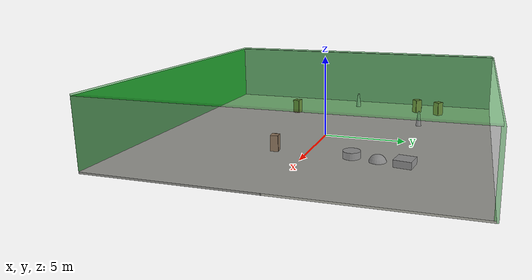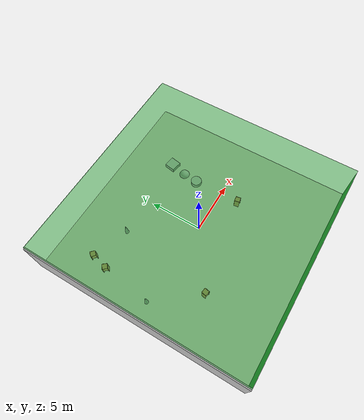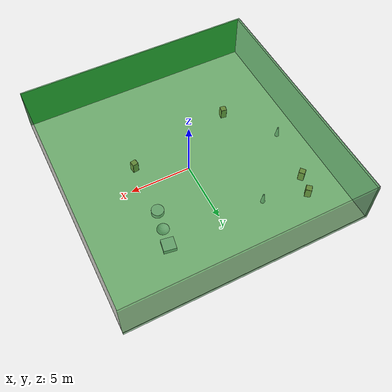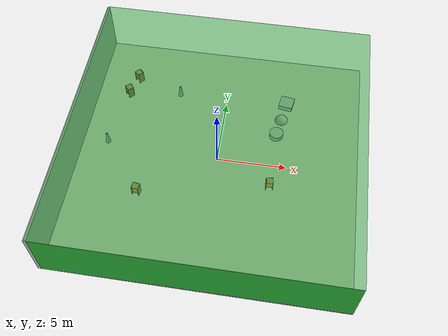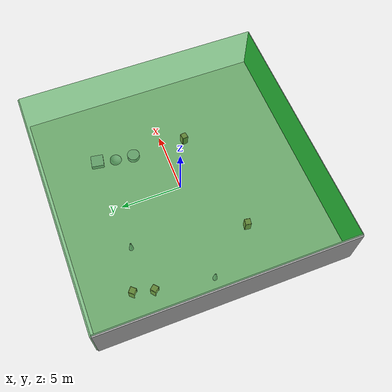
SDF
<sdf version="1.4">
 <world name="default">
  <physics type="ode">
   <max_step_size>0.001</max_step_size>
   <real_time_factor>1</real_time_factor>
   <real_time_update_rate>1000</real_time_update_rate>
   <gravity>0 0 -9.8</gravity>
  </physics>
  <scene><ambient>0.4 0.4 0.4 1</ambient><background>0.7 0.7 0.7 1</background><shadows>1</shadows></scene>
  <model name="Surrounding">
   <static>1</static>
   <link name="Ceiling">
    <collision name="Ceiling_Collision"><geometry><box><size>20 20 0.1</size></box></geometry></collision>
    <visual name="Ceiling_Visual">
     <geometry><box><size>20 20 0.1</size></box></geometry>
     <material>
      <script><uri>file://media/materials/scripts/gazebo.material</uri><name>Gazebo/GreenTransparent</name></script>
     </material>
    </visual>
    <pose>0 0 4.05 0 0 0</pose>
   </link>
   <link name="Wall_South">
    <collision name="Wall_South_Collision">
     <geometry><box><size>20 0 4</size></box></geometry>
     <pose>0 0 2 0 -0 0</pose>
    </collision>
    <visual name="Wall_South_Visual">
     <pose>0 0 2 0 -0 0</pose>
     <geometry><box><size>20 0 4</size></box></geometry>
     <material>
      <script><uri>file://media/materials/scripts/gazebo.material</uri><name>Gazebo/Green</name></script>
     </material>
    </visual>
    <velocity_decay><linear>0</linear><angular>0</angular></velocity_decay>
    <pose>0 -10 0 0 -0 0</pose>
   </link>
   <link name="Wall_East">
    <collision name="Wall_21_Collision">
     <geometry><box><size>20 0 4</size></box></geometry>
     <pose>0 0 2 0 -0 0</pose>
    </collision>
    <visual name="Wall_21_Visual">
     <pose>0 0 2 0 -0 0</pose>
     <geometry><box><size>20 0 4</size></box></geometry>
     <material>
      <script><uri>file://media/materials/scripts/gazebo.material</uri><name>Gazebo/GreyTransparent</name></script>
     </material>
    </visual>
    <velocity_decay><linear>0</linear><angular>0</angular></velocity_decay>
    <pose>10 0 0 0 -0 1.5708</pose>
   </link>
   <link name="Wall_North">
    <collision name="Wall_22_Collision">
     <geometry><box><size>20 0.2 4</size></box></geometry>
     <pose>0 0 2 0 -0 0</pose>
    </collision>
    <visual name="Wall_22_Visual">
     <pose>0 0 2 0 -0 0</pose>
     <geometry><box><size>20 0.2 4</size></box></geometry>
     <material>
      <script><uri>file://media/materials/scripts/gazebo.material</uri><name>Gazebo/GreenTransparent</name></script>
     </material>
    </visual>
    <velocity_decay><linear>0</linear><angular>0</angular></velocity_decay>
    <pose>0 10 0 0 -0 0</pose>
   </link>
   <link name="Wall_West">
    <collision name="Wall_23_Collision">
     <geometry><box><size>20 0.2 4</size></box></geometry>
     <pose>0 0 2 0 -0 0</pose>
    </collision>
    <visual name="Wall_23_Visual">
     <pose>0 0 2 0 -0 0</pose>
     <geometry><box><size>20 0.2 4</size></box></geometry>
     <material>
      <script><uri>file://media/materials/scripts/gazebo.material</uri><name>Gazebo/LightOn</name></script>
     </material>
    </visual>
    <velocity_decay><linear>0</linear><angular>0</angular></velocity_decay>
    <pose>-10 0 0 0 0 -1.5708</pose>
   </link>
   <link name="Ground_link">
    <collision name="collision">
     <pose>0 0 .05 0 -0 0</pose>
     <geometry><box><size>20 20 0.1</size></box></geometry>
    </collision>
    <visual name="visual">
     <pose>0 0 .05 0 -0 0</pose>
     <geometry><box><size>20 20 0.1</size></box></geometry>
     <material>
      <script><uri>file://media/materials/scripts/gazebo.material</uri><name>Gazebo/PaintedWall</name></script>
     </material>
    </visual>
   </link>
   <static>1</static>
  </model>
  <spherical_coordinates>
   <surface_model>EARTH_WGS84</surface_model>
   <latitude_deg>0</latitude_deg>
   <longitude_deg>0</longitude_deg>
   <elevation>0</elevation>
   <heading_deg>0</heading_deg>
  </spherical_coordinates>
  <light name="lightball_0" type="diffuse">
   <diffuse>0.8 0.8 0.8 1</diffuse>
   <specular>0.2 0.2 0.2 1</specular>
   <attenuation>
    <range>100</range>
    <constant>0.7</constant>
    <linear>0.01</linear>
    <quadratic>0.001</quadratic>
   </attenuation>
   <direction>-0.5 0.1 -0.9</direction>
   <pose>8.13745104677 -0.627486085027 1.55123437795 0 0 0</pose>
  </light>
  <light name="lightball_1" type="diffuse">
   <diffuse>0.8 0.8 0.8 1</diffuse>
   <specular>0.2 0.2 0.2 1</specular>
   <attenuation>
    <range>100</range>
    <constant>0.7</constant>
    <linear>0.01</linear>
    <quadratic>0.001</quadratic>
   </attenuation>
   <direction>-0.5 0.1 -0.9</direction>
   <pose>9.76111630471 -7.59914641198 3.54457124426 0 0 0</pose>
  </light>
  <light name="lightball_2" type="diffuse">
   <diffuse>0.8 0.8 0.8 1</diffuse>
   <specular>0.2 0.2 0.2 1</specular>
   <attenuation>
    <range>100</range>
    <constant>0.7</constant>
    <linear>0.01</linear>
    <quadratic>0.001</quadratic>
   </attenuation>
   <direction>-0.5 0.1 -0.9</direction>
   <pose>-8.5801548487 -0.903227721675 3.336905226 0 0 0</pose>
  </light>
  <light name="lightball_3" type="diffuse">
   <diffuse>0.8 0.8 0.8 1</diffuse>
   <specular>0.2 0.2 0.2 1</specular>
   <attenuation>
    <range>100</range>
    <constant>0.7</constant>
    <linear>0.01</linear>
    <quadratic>0.001</quadratic>
   </attenuation>
   <direction>-0.5 0.1 -0.9</direction>
   <pose>8.88294038708 -0.827151130276 2.32968509123 0 0 0</pose>
  </light>
  <light name="lightball_4" type="diffuse">
   <diffuse>0.8 0.8 0.8 1</diffuse>
   <specular>0.2 0.2 0.2 1</specular>
   <attenuation>
    <range>100</range>
    <constant>0.7</constant>
    <linear>0.01</linear>
    <quadratic>0.001</quadratic>
   </attenuation>
   <direction>-0.5 0.1 -0.9</direction>
   <pose>-1.88184040994 -4.59992794084 1.65362087607 0 0 0</pose>
  </light>
  <include>
   <uri>model://construction_cone</uri>
   <pose>-8.09170831799 0.309564831462 0 0 0 0.77305149484</pose>
  </include>
  <include><uri>model://cabinet</uri><pose>-7.49799689416 4.85254972857 0 0 0 0.706967120974</pose></include>
  <include><uri>model://cabinet</uri><pose>-7.08321284418 6.4051023205 0 0 0 0.858001323663</pose></include>
  <include><uri>model://cabinet</uri><pose>-5.07251903311 -3.61860370545 0 0 0 1.40188120533</pose></include>
  <include>
   <uri>model://construction_cone</uri>
   <pose>-3.63658204263 5.39647708322 0 0 0 2.65404860435</pose>
  </include>
  <include><uri>model://cabinet</uri><pose>3.94334884249 -1.82606126149 0 0 0 1.7019672208</pose></include>
  <include>
   <uri>model://textured_shapes</uri>
   <pose>4.25761083433 4.12786312504 0 0 0 2.97627050219</pose>
  </include>
 </world>
</sdf>

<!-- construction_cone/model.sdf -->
<sdf version="1.5">
  <model name="Construction Cone">
    <link name="link">
      <collision name="collision">
        <geometry>
          <mesh>
            <scale>10 10 10</scale>
            <uri>file://isr-testbed/construction_cone/meshes/construction_cone.dae</uri>
          </mesh>
        </geometry>
      </collision>
      <visual name="visual">
        <geometry>
          <mesh>
            <scale>10 10 10</scale>
            <uri>file://isr-testbed/construction_cone/meshes/construction_cone.dae</uri>
          </mesh>
        </geometry>
      </visual>
    </link>
  </model>
</sdf>

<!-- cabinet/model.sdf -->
<sdf version="1.5">
  <model name="cabinet">
    <static>true</static>
    <link name="cabinet_bottom_plate">
      <inertial>
        <pose>0 0 -1 0 0 0</pose>
        <inertia>
          <ixx>2.050000</ixx>
          <ixy>0</ixy>
          <ixz>0</ixz>
          <iyy>2.050000</iyy>
          <iyz>0</iyz>
          <izz>2.050000</izz>
        </inertia>
        <mass>25.000000</mass>
      </inertial>
      <collision name="cabinet_bottom_plate_geom">
        <pose>0 0 0.010000 0 0 0</pose>
        <geometry>
          <box>
            <size>0.450000 0.450000 0.020000</size>
          </box>
        </geometry>
      </collision>
      <visual name="cabinet_bottom_plate_geom_visual">
        <pose>0 0 0.010000 0 0 0</pose>
        <geometry>
          <box>
            <size>0.450000 0.450000 0.020000</size>
          </box>
        </geometry>
        <material>
          <script>
            <uri>model://media/materials/scripts/gazebo.material</uri>
            <name>Gazebo/Wood</name>
          </script>
        </material>
      </visual>
      <collision name="cabinet_bottom_plate_geom_cabinet_back_plate">
        <pose>0.235000 0 0.510000 0 0 0</pose>
        <geometry>
          <box>
            <size>0.020000 0.450000 1.020000</size>
          </box>
        </geometry>
      </collision>
      <visual name="cabinet_bottom_plate_geom_cabinet_back_plate_visual">
        <pose>0.235000 0 0.510000 0 0 0</pose>
        <geometry>
          <box>
            <size>0.020000 0.450000 1.020000</size>
          </box>
        </geometry>
        <material>
          <script>
            <uri>model://media/materials/scripts/gazebo.material</uri>
            <name>Gazebo/Wood</name>
          </script>
        </material>
      </visual>
      <collision name="cabinet_bottom_plate_geom_cabinet_left_plate">
        <pose>0 0.235000 0.510000 0 0 0</pose>
        <geometry>
          <box>
            <size>0.450000 0.020000 1.020000</size>
          </box>
        </geometry>
      </collision>
      <visual name="cabinet_bottom_plate_geom_cabinet_left_plate_visual">
        <pose>0 0.235000 0.510000 0 0 0</pose>
        <geometry>
          <box>
            <size>0.450000 0.020000 1.020000</size>
          </box>
        </geometry>
        <material>
          <script>
            <uri>model://media/materials/scripts/gazebo.material</uri>
            <name>Gazebo/Wood</name>
          </script>
        </material>
      </visual>
      <collision name="cabinet_bottom_plate_geom_cabinet_middle_plate">
        <pose>0 0 0.510000 0 0 0</pose>
        <geometry>
          <box>
            <size>0.450000 0.450000 0.020000</size>
          </box>
        </geometry>
      </collision>
      <visual name="cabinet_bottom_plate_geom_cabinet_middle_plate_visual">
        <pose>0 0 0.510000 0 0 0</pose>
        <geometry>
          <box>
            <size>0.450000 0.450000 0.020000</size>
          </box>
        </geometry>
        <material>
          <script>
            <uri>model://media/materials/scripts/gazebo.material</uri>
            <name>Gazebo/Wood</name>
          </script>
        </material>
      </visual>
      <collision name="cabinet_bottom_plate_geom_cabinet_right_plate">
        <pose>0 -0.235000 0.510000 0 0 0</pose>
        <geometry>
          <box>
            <size>0.450000 0.020000 1.020000</size>
          </box>
        </geometry>
      </collision>
      <visual name="cabinet_bottom_plate_geom_cabinet_right_plate_visual">
        <pose>0 -0.235000 0.510000 0 0 0</pose>
        <geometry>
          <box>
            <size>0.450000 0.020000 1.020000</size>
          </box>
        </geometry>
        <material>
          <script>
            <uri>model://media/materials/scripts/gazebo.material</uri>
            <name>Gazebo/Wood</name>
          </script>
        </material>
      </visual>
      <collision name="cabinet_bottom_plate_geom_cabinet_top_plate">
        <pose>0 0 1.010000 0 0 0</pose>
        <geometry>
          <box>
            <size>0.450000 0.450000 0.020000</size>
          </box>
        </geometry>
      </collision>
      <visual name="cabinet_bottom_plate_geom_cabinet_top_plate_visual">
        <pose>0 0 1.010000 0 0 0</pose>
        <geometry>
          <box>
            <size>0.450000 0.450000 0.020000</size>
          </box>
        </geometry>
        <material>
          <script>
            <uri>model://media/materials/scripts/gazebo.material</uri>
            <name>Gazebo/Wood</name>
          </script>
        </material>
      </visual>
    </link>
  </model>
</sdf>

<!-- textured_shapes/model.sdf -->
<sdf version="1.6">
  <model name="textured_shapes">
    <pose>0 0 0.5 0 0 0</pose>
    <link name="box">
      <pose>0 -1.5 0 0 0 0</pose>
      <collision name="collision">
        <geometry>
          <box>
            <size>1 1 1</size>
          </box>
        </geometry>
      </collision>
      <visual name="visual">
        <geometry>
          <box>
            <size>1 1 1</size>
          </box>
        </geometry>
        <material>
          <script>
            <uri>model://../model_source/models/textured_shapes/materials/scripts</uri>
            <uri>model://../model_source/models/textured_shapes/materials/textures</uri>
            <name>TexturedShape/Squares</name>
          </script>
        </material>
      </visual>
    </link>
    <link name="sphere">
      <collision name="collision">
        <geometry>
          <sphere>
            <radius>0.5</radius>
          </sphere>
        </geometry>
      </collision>
      <visual name="visual">
        <geometry>
          <sphere>
            <radius>0.5</radius>
          </sphere>
        </geometry>
        <material>
          <script>
            <uri>model://../model_source/models/textured_shapes/materials/scripts</uri>
            <uri>model://../model_source/models/textured_shapes/materials/textures</uri>
            <name>TexturedShape/Squares</name>
          </script>
        </material>
      </visual>
    </link>
    <link name="cylinder">
      <pose>0 1.5 0 0 0 0</pose>
      <collision name="collision">
        <geometry>
          <cylinder>
            <radius>0.5</radius>
            <length>1</length>
          </cylinder>
        </geometry>
      </collision>
      <visual name="visual">
        <geometry>
          <cylinder>
            <radius>0.5</radius>
            <length>1</length>
          </cylinder>
        </geometry>
        <material>
          <script>
            <uri>model://../model_source/models/textured_shapes/materials/scripts</uri>
            <uri>model://../model_source/models/textured_shapes/materials/textures</uri>
            <name>TexturedShape/Squares</name>
          </script>
        </material>
      </visual>
    </link>
  </model>
</sdf>
